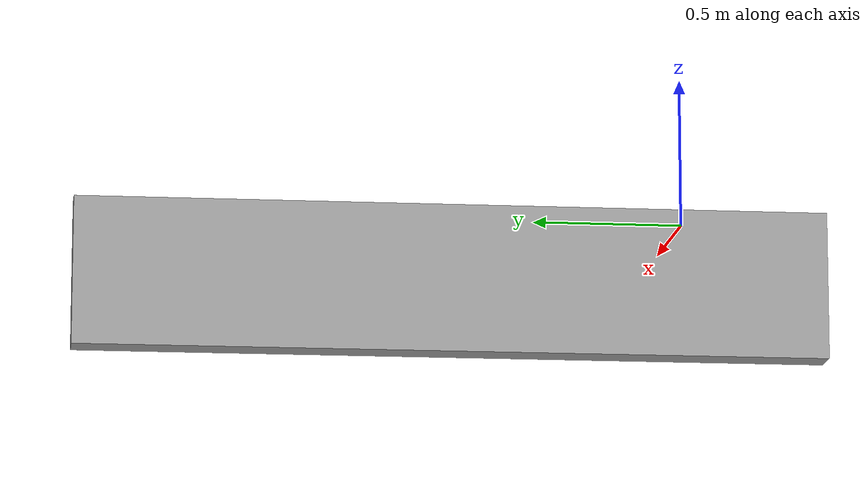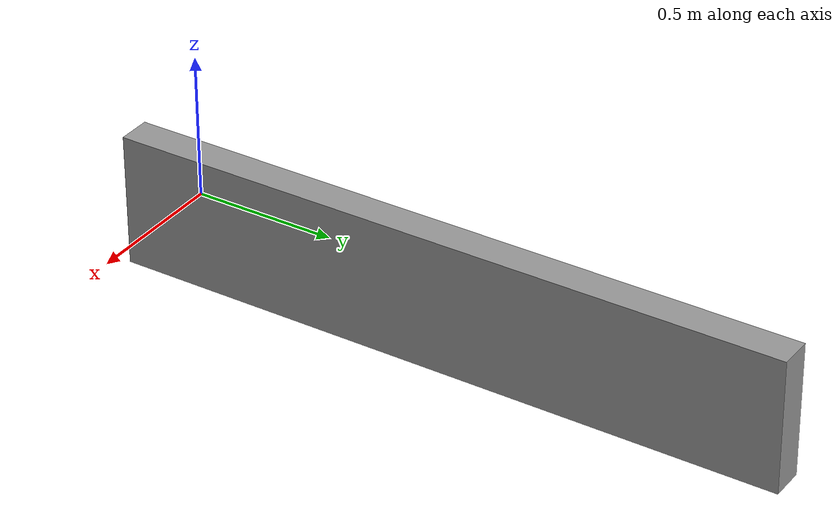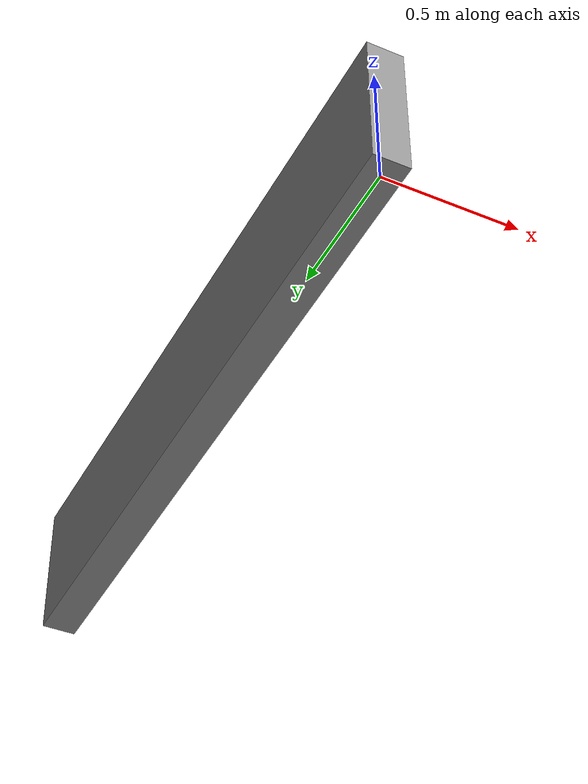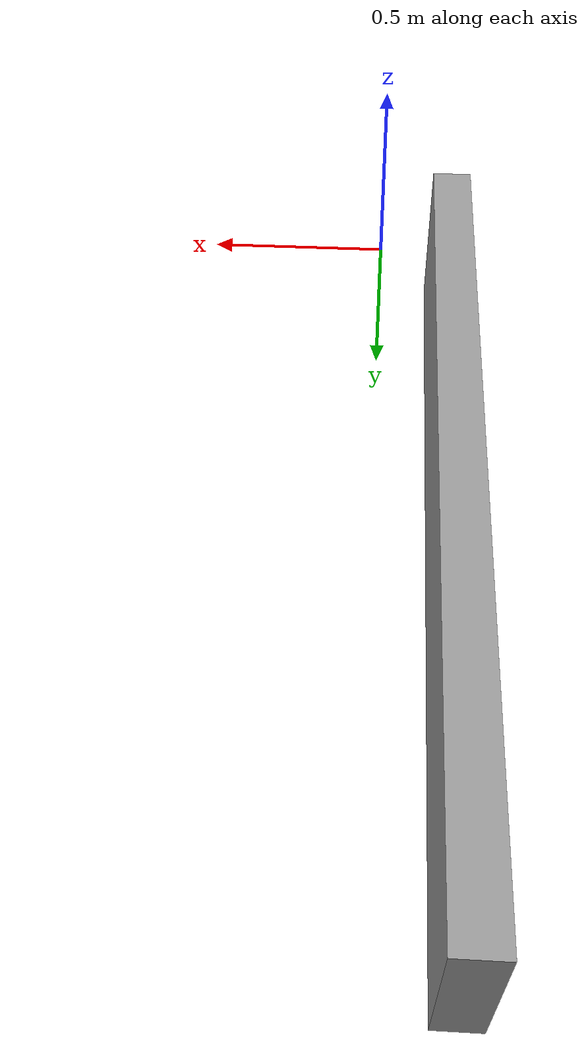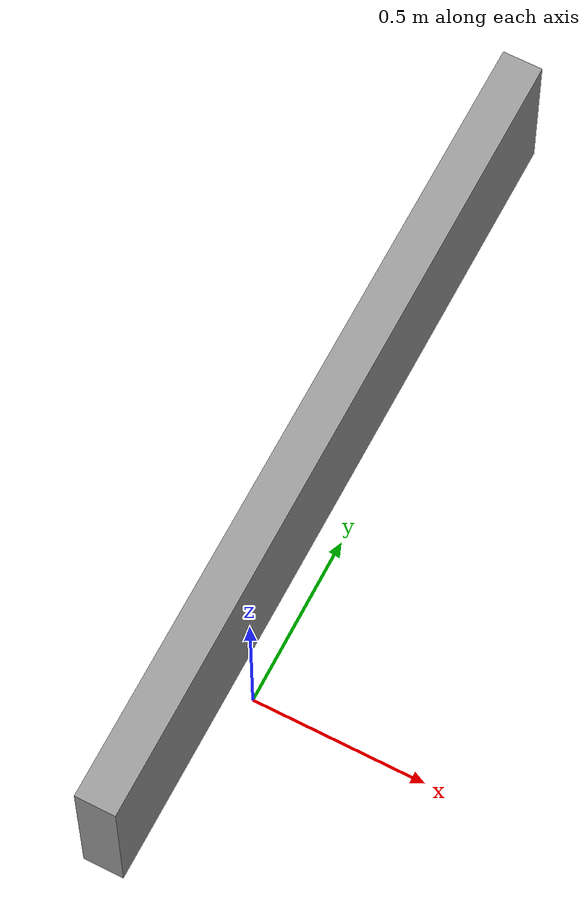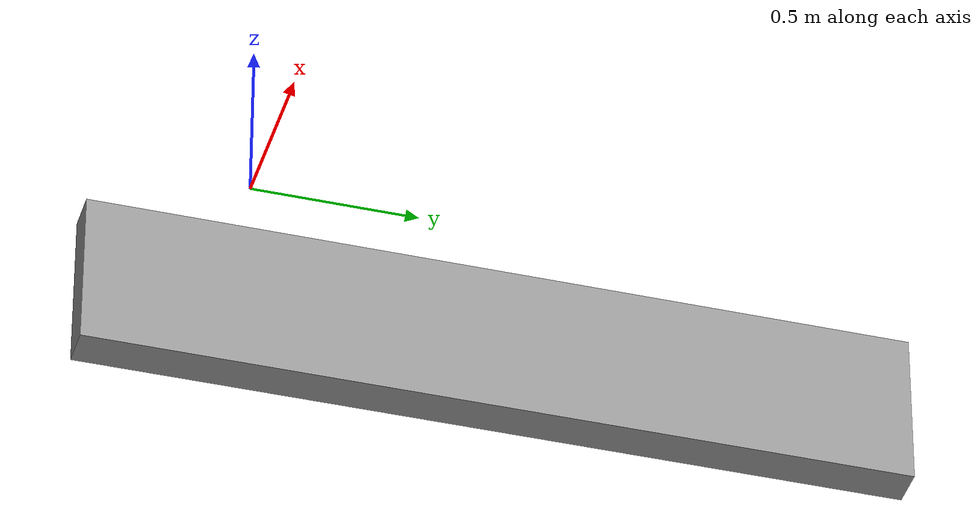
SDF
<?xml version='1.0'?>
<sdf version='1.7'>
  <model name='murs'>
    <link name='link'>
      <inertial>
        <mass>0.146674</mass>
        <inertia>
          <ixx>0.0781773</ixx>
          <ixy>0</ixy>
          <ixz>0</ixz>
          <iyy>0.00309761</iyy>
          <iyz>0</iyz>
          <izz>0.0754374</izz>
        </inertia>
        <pose>0 0 0 0 -0 0</pose>
      </inertial>
      <self_collide>0</self_collide>
      <enable_wind>0</enable_wind>
      <kinematic>1</kinematic>
      <pose>-0.225456 0.79863 -0.251939 0 -0 0</pose>
      <gravity>0</gravity>
      <visual name='visual'>
        <geometry>
          <box>
            <size>0.120964 2.48137 0.488666</size>
          </box>
        </geometry>
        <material>
          <script>
            <name>Gazebo/Grey</name>
            <uri>file://media/materials/scripts/gazebo.material</uri>
          </script>
          <shader type='pixel'>
            <normal_map>__default__</normal_map>
          </shader>
          <ambient>0.5 0.5 0.5 0</ambient>
          <diffuse>0.5 0.5 0.5 1</diffuse>
          <specular>0.01 0.01 0.01 1</specular>
          <emissive>0 0 0 1</emissive>
        </material>
        <pose>0 0 0 0 -0 0</pose>
        <transparency>0</transparency>
        <cast_shadows>1</cast_shadows>
      </visual>
      <collision name='collision'>
        <laser_retro>0</laser_retro>
        <max_contacts>10</max_contacts>
        <pose>0 0 0 0 -0 0</pose>
        <geometry>
          <box>
            <size>0.120964 2.48137 0.488666</size>
          </box>
        </geometry>
        <surface>
          <friction>
            <ode>
              <mu>1</mu>
              <mu2>1</mu2>
              <fdir1>0 0 0</fdir1>
              <slip1>0</slip1>
              <slip2>0</slip2>
            </ode>
            <torsional>
              <coefficient>1</coefficient>
              <patch_radius>0</patch_radius>
              <surface_radius>0</surface_radius>
              <use_patch_radius>1</use_patch_radius>
              <ode>
                <slip>0</slip>
              </ode>
            </torsional>
          </friction>
          <bounce>
            <restitution_coefficient>0</restitution_coefficient>
            <threshold>1e+06</threshold>
          </bounce>
          <contact>
            <collide_without_contact>0</collide_without_contact>
            <collide_without_contact_bitmask>1</collide_without_contact_bitmask>
            <collide_bitmask>1</collide_bitmask>
            <ode>
              <soft_cfm>0</soft_cfm>
              <soft_erp>0.2</soft_erp>
              <kp>1e+13</kp>
              <kd>1</kd>
              <max_vel>0.01</max_vel>
              <min_depth>0</min_depth>
            </ode>
            <bullet>
              <split_impulse>1</split_impulse>
              <split_impulse_penetration_threshold>-0.01</split_impulse_penetration_threshold>
              <soft_cfm>0</soft_cfm>
              <soft_erp>0.2</soft_erp>
              <kp>1e+13</kp>
              <kd>1</kd>
            </bullet>
          </contact>
        </surface>
      </collision>
    </link>
    <static>0</static>
    <allow_auto_disable>1</allow_auto_disable>
  </model>
</sdf>
